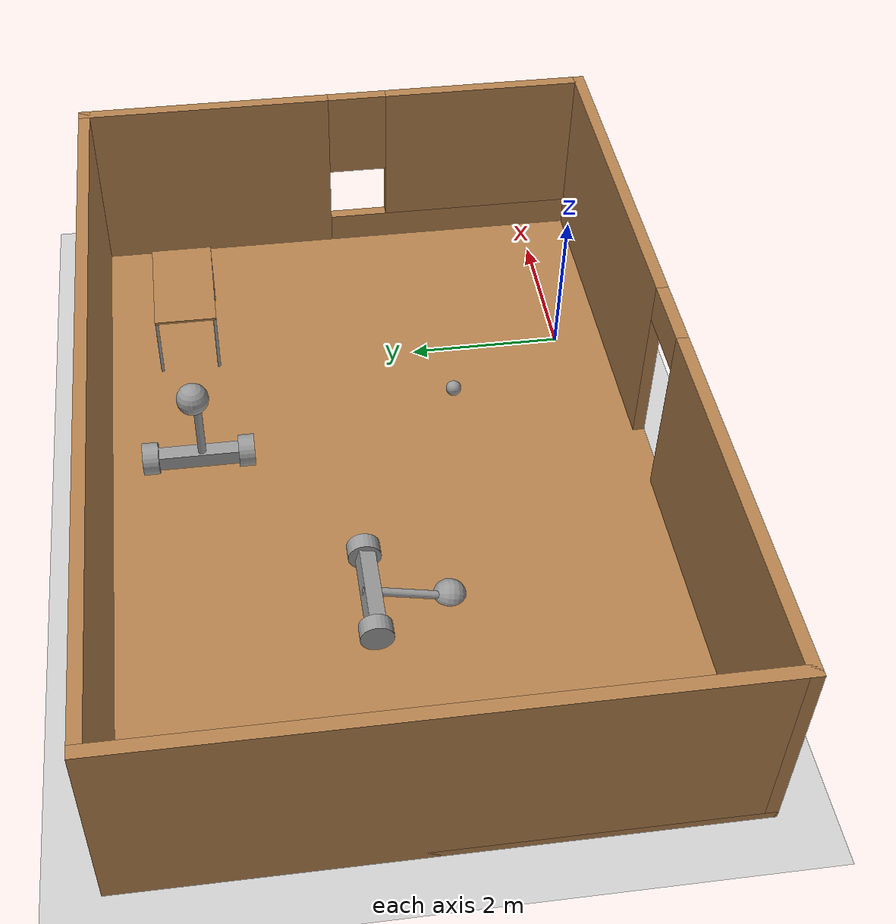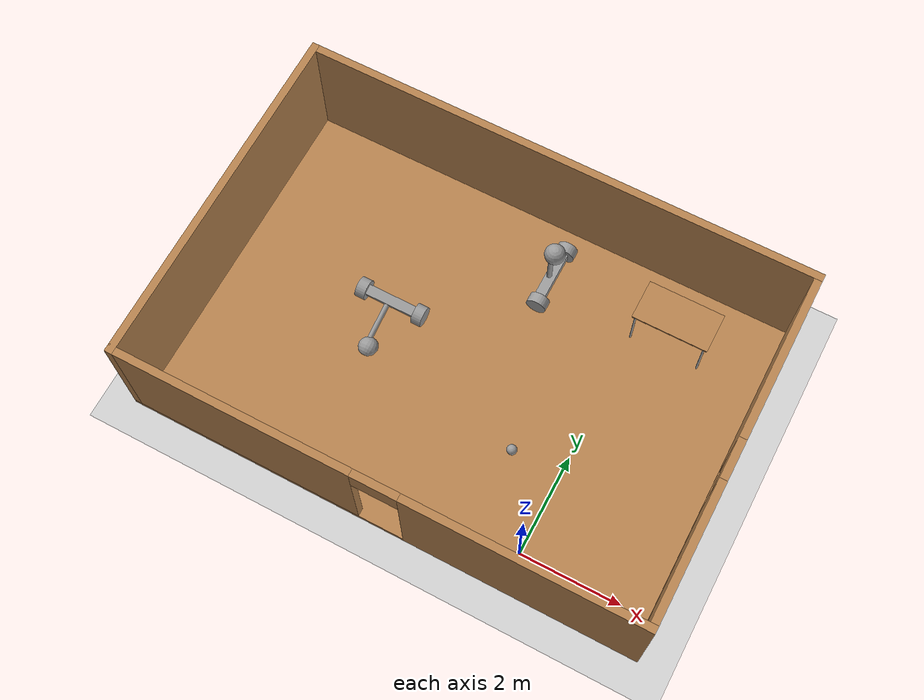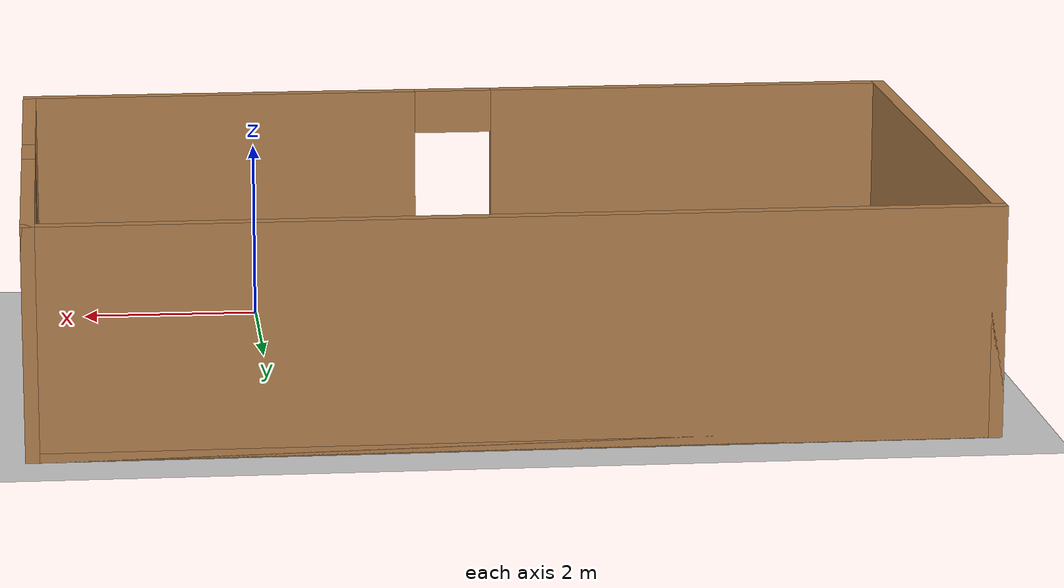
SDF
<sdf version="1.6">
 <world name="default">
  <plugin name="main" filename="/home/salehn/Desktop/robotics/UdacityProjects/Project1/script/libmain.so"/>
  <light name="sun" type="directional">
   <pose>0 0 10 0 -0 0</pose>
   <diffuse>0.8 0.8 0.8 1</diffuse>
   <specular>0.2 0.2 0.2 1</specular>
   <attenuation>
    <range>1000</range>
    <constant>0.9</constant>
    <linear>0.01</linear>
    <quadratic>0.001</quadratic>
   </attenuation>
   <direction>-0.5 0.1 -0.9</direction>
  </light>
  <model name="ground_plane">
   <static>1</static>
   <link name="link">
    <collision name="collision">
     <geometry><plane><normal>0 0 1</normal><size>100 100</size></plane></geometry>
     <surface>
      <contact><collide_bitmask>65535</collide_bitmask></contact>
      <friction><ode><mu>100</mu><mu2>50</mu2></ode></friction>
     </surface>
    </collision>
    <visual name="visual">
     <cast_shadows>0</cast_shadows>
     <geometry><plane><normal>0 0 1</normal><size>100 100</size></plane></geometry>
     <material>
      <script><uri>file://media/materials/scripts/gazebo.material</uri><name>Gazebo/Grey</name></script>
     </material>
    </visual>
   </link>
  </model>
  <gravity>0 0 -9.8</gravity>
  <magnetic_field>6e-06 2.3e-05 -4.2e-05</magnetic_field>
  <atmosphere type="adiabatic"/>
  <physics name="default_physics" default="0" type="ode">
   <max_step_size>0.001</max_step_size>
   <real_time_factor>1</real_time_factor>
   <real_time_update_rate>1000</real_time_update_rate>
  </physics>
  <scene><ambient>0.4 0.4 0.4 1</ambient><background>0.7 0.7 0.7 1</background><shadows>1</shadows></scene>
  <spherical_coordinates>
   <surface_model>EARTH_WGS84</surface_model>
   <latitude_deg>0</latitude_deg>
   <longitude_deg>0</longitude_deg>
   <elevation>0</elevation>
   <heading_deg>0</heading_deg>
  </spherical_coordinates>
  <model name="Structure">
   <pose>-2.46009 2.74718 0 0 -0 0</pose>
   <link name="Floor_10">
    <collision name="Floor_10_Collision">
     <geometry><box><size>10.25 7 0.1</size></box></geometry>
     <pose>0 0 0.05 0 -0 0</pose>
    </collision>
    <visual name="Floor_10_Visual">
     <pose>0 0 0.05 0 -0 0</pose>
     <geometry><box><size>10.25 7 0.1</size></box></geometry>
     <material>
      <script><uri>file://media/materials/scripts/gazebo.material</uri><name>Gazebo/Wood</name></script>
      <ambient>1 1 1 1</ambient>
     </material>
     <meta><layer>0</layer></meta>
    </visual>
   </link>
   <link name="Wall_63">
    <collision name="Wall_63_Collision">
     <geometry><box><size>10.25 0.15 2.5</size></box></geometry>
     <pose>0 0 1.25 0 -0 0</pose>
    </collision>
    <visual name="Wall_63_Visual">
     <pose>0 0 1.25 0 -0 0</pose>
     <geometry><box><size>10.25 0.15 2.5</size></box></geometry>
     <material>
      <script><uri>file://media/materials/scripts/gazebo.material</uri><name>Gazebo/Wood</name></script>
      <ambient>1 1 1 1</ambient>
     </material>
     <meta><layer>0</layer></meta>
    </visual>
    <pose>0 3.425 0 0 -0 0</pose>
   </link>
   <link name="Wall_64">
    <pose>5.05 0 0 0 -0 -1.5708</pose>
    <visual name="Wall_64_Visual_0">
     <pose>-1.80286 0 1.25 0 -0 0</pose>
     <geometry><box><size>3.39429 0.15 2.5</size></box></geometry>
     <material>
      <script><uri>file://media/materials/scripts/gazebo.material</uri><name>Gazebo/Wood</name></script>
      <ambient>1 1 1 1</ambient>
     </material>
     <meta><layer>0</layer></meta>
    </visual>
    <collision name="Wall_64_Collision_0">
     <geometry><box><size>3.39429 0.15 2.5</size></box></geometry>
     <pose>-1.80286 0 1.25 0 -0 0</pose>
    </collision>
    <visual name="Wall_64_Visual_1">
     <pose>1.69714 0 0.25 0 -0 0</pose>
     <geometry><box><size>3.60571 0.15 0.5</size></box></geometry>
     <material>
      <script><uri>file://media/materials/scripts/gazebo.material</uri><name>Gazebo/Wood</name></script>
      <ambient>1 1 1 1</ambient>
     </material>
     <meta><layer>0</layer></meta>
    </visual>
    <collision name="Wall_64_Collision_1">
     <geometry><box><size>3.60571 0.15 0.5</size></box></geometry>
     <pose>1.69714 0 0.25 0 -0 0</pose>
    </collision>
    <visual name="Wall_64_Visual_2">
     <pose>2.09714 0 1.5 0 -0 0</pose>
     <geometry><box><size>2.80571 0.15 2</size></box></geometry>
     <material>
      <script><uri>file://media/materials/scripts/gazebo.material</uri><name>Gazebo/Wood</name></script>
      <ambient>1 1 1 1</ambient>
     </material>
     <meta><layer>0</layer></meta>
    </visual>
    <collision name="Wall_64_Collision_2">
     <geometry><box><size>2.80571 0.15 2</size></box></geometry>
     <pose>2.09714 0 1.5 0 -0 0</pose>
    </collision>
    <visual name="Wall_64_Visual_3">
     <pose>0.294286 0 1.9 0 -0 0</pose>
     <geometry><box><size>0.8 0.15 1.2</size></box></geometry>
     <material>
      <script><uri>file://media/materials/scripts/gazebo.material</uri><name>Gazebo/Wood</name></script>
      <ambient>1 1 1 1</ambient>
     </material>
     <meta><layer>0</layer></meta>
    </visual>
    <collision name="Wall_64_Collision_3">
     <geometry><box><size>0.8 0.15 1.2</size></box></geometry>
     <pose>0.294286 0 1.9 0 -0 0</pose>
    </collision>
   </link>
   <link name="Wall_65">
    <pose>0 -3.425 0 0 -0 3.14159</pose>
    <visual name="Wall_65_Visual_0">
     <pose>-2.82083 0 1.25 0 -0 0</pose>
     <geometry><box><size>4.60834 0.15 2.5</size></box></geometry>
     <material>
      <script><uri>file://media/materials/scripts/gazebo.material</uri><name>Gazebo/Wood</name></script>
      <ambient>1 1 1 1</ambient>
     </material>
     <meta><layer>0</layer></meta>
    </visual>
    <collision name="Wall_65_Collision_0">
     <geometry><box><size>4.60834 0.15 2.5</size></box></geometry>
     <pose>-2.82083 0 1.25 0 -0 0</pose>
    </collision>
    <visual name="Wall_65_Visual_1">
     <pose>2.75417 0 1.25 0 -0 0</pose>
     <geometry><box><size>4.74166 0.15 2.5</size></box></geometry>
     <material>
      <script><uri>file://media/materials/scripts/gazebo.material</uri><name>Gazebo/Wood</name></script>
      <ambient>1 1 1 1</ambient>
     </material>
     <meta><layer>0</layer></meta>
    </visual>
    <collision name="Wall_65_Collision_1">
     <geometry><box><size>4.74166 0.15 2.5</size></box></geometry>
     <pose>2.75417 0 1.25 0 -0 0</pose>
    </collision>
    <visual name="Wall_65_Visual_2">
     <pose>-0.066659 0 2.25 0 -0 0</pose>
     <geometry><box><size>0.9 0.15 0.5</size></box></geometry>
     <material>
      <script><uri>file://media/materials/scripts/gazebo.material</uri><name>Gazebo/Wood</name></script>
      <ambient>1 1 1 1</ambient>
     </material>
     <meta><layer>0</layer></meta>
    </visual>
    <collision name="Wall_65_Collision_2">
     <geometry><box><size>0.9 0.15 0.5</size></box></geometry>
     <pose>-0.066659 0 2.25 0 -0 0</pose>
    </collision>
   </link>
   <link name="Wall_66">
    <collision name="Wall_66_Collision">
     <geometry><box><size>7 0.15 2.5</size></box></geometry>
     <pose>0 0 1.25 0 -0 0</pose>
    </collision>
    <visual name="Wall_66_Visual">
     <pose>0 0 1.25 0 -0 0</pose>
     <geometry><box><size>7 0.15 2.5</size></box></geometry>
     <material>
      <script><uri>file://media/materials/scripts/gazebo.material</uri><name>Gazebo/Wood</name></script>
      <ambient>1 1 1 1</ambient>
     </material>
     <meta><layer>0</layer></meta>
    </visual>
    <pose>-5.05 0 0 0 -0 1.5708</pose>
   </link>
   <static>1</static>
  </model>
  <model name="table">
   <static>1</static>
   <link name="link">
    <collision name="surface">
     <pose>0 0 1 0 -0 0</pose>
     <geometry><box><size>1.5 0.8 0.03</size></box></geometry>
     <surface><friction><ode><mu>0.6</mu><mu2>0.6</mu2></ode></friction></surface>
    </collision>
    <visual name="visual1">
     <pose>0 0 1 0 -0 0</pose>
     <geometry><box><size>1.5 0.8 0.03</size></box></geometry>
     <material>
      <script><uri>file://media/materials/scripts/gazebo.material</uri><name>Gazebo/Wood</name></script>
     </material>
    </visual>
    <collision name="front_left_leg">
     <pose>0.68 0.38 0.5 0 -0 0</pose>
     <geometry><cylinder><radius>0.02</radius><length>1</length></cylinder></geometry>
    </collision>
    <visual name="front_left_leg">
     <pose>0.68 0.38 0.5 0 -0 0</pose>
     <geometry><cylinder><radius>0.02</radius><length>1</length></cylinder></geometry>
     <material>
      <script><uri>file://media/materials/scripts/gazebo.material</uri><name>Gazebo/Grey</name></script>
     </material>
    </visual>
    <collision name="front_right_leg">
     <pose>0.68 -0.38 0.5 0 -0 0</pose>
     <geometry><cylinder><radius>0.02</radius><length>1</length></cylinder></geometry>
    </collision>
    <visual name="front_right_leg">
     <pose>0.68 -0.38 0.5 0 -0 0</pose>
     <geometry><cylinder><radius>0.02</radius><length>1</length></cylinder></geometry>
     <material>
      <script><uri>file://media/materials/scripts/gazebo.material</uri><name>Gazebo/Grey</name></script>
     </material>
    </visual>
    <collision name="back_right_leg">
     <pose>-0.68 -0.38 0.5 0 -0 0</pose>
     <geometry><cylinder><radius>0.02</radius><length>1</length></cylinder></geometry>
    </collision>
    <visual name="back_right_leg">
     <pose>-0.68 -0.38 0.5 0 -0 0</pose>
     <geometry><cylinder><radius>0.02</radius><length>1</length></cylinder></geometry>
     <material>
      <script><uri>file://media/materials/scripts/gazebo.material</uri><name>Gazebo/Grey</name></script>
     </material>
    </visual>
    <collision name="back_left_leg">
     <pose>-0.68 0.38 0.5 0 -0 0</pose>
     <geometry><cylinder><radius>0.02</radius><length>1</length></cylinder></geometry>
    </collision>
    <visual name="back_left_leg">
     <pose>-0.68 0.38 0.5 0 -0 0</pose>
     <geometry><cylinder><radius>0.02</radius><length>1</length></cylinder></geometry>
     <material>
      <script><uri>file://media/materials/scripts/gazebo.material</uri><name>Gazebo/Grey</name></script>
     </material>
    </visual>
   </link>
   <pose>0.645344 5.03719 0 0 -0 0</pose>
  </model>
  <model name="robot">
   <link name="link_1">
    <inertial>
     <mass>1</mass>
     <inertia><ixx>0.145833</ixx><ixy>0</ixy><ixz>0</ixz><iyy>0.145833</iyy><iyz>0</iyz><izz>0.125</izz></inertia>
    </inertial>
    <pose>-0.37971 -0.722453 -0.174 1.5707 -0 0</pose>
    <visual name="visual">
     <geometry><cylinder><radius>0.2</radius><length>0.2</length></cylinder></geometry>
     <material>
      <lighting>1</lighting>
      <script><uri>file://media/materials/scripts/gazebo.material</uri><name>Gazebo/Grey</name></script>
      <shader type="pixel"><normal_map>__default__</normal_map></shader>
      <ambient>0.3 0.3 0.3 1</ambient>
      <diffuse>0.7 0.7 0.7 1</diffuse>
      <specular>0.01 0.01 0.01 1</specular>
      <emissive>0 0 0 1</emissive>
     </material>
    </visual>
    <collision name="collision">
     <geometry><cylinder><radius>0.2</radius><length>0.2</length></cylinder></geometry>
     <surface>
      <friction>
       <ode><mu>1</mu><mu2>1</mu2><fdir1>0 0 0</fdir1><slip1>0</slip1><slip2>0</slip2></ode>
       <torsional>
        <coefficient>1</coefficient>
        <patch_radius>0</patch_radius>
        <surface_radius>0</surface_radius>
        <use_patch_radius>1</use_patch_radius>
        <ode><slip>0</slip></ode>
       </torsional>
      </friction>
      <bounce><restitution_coefficient>0</restitution_coefficient><threshold>1e+06</threshold></bounce>
      <contact>
       <collide_without_contact>0</collide_without_contact>
       <collide_without_contact_bitmask>1</collide_without_contact_bitmask>
       <collide_bitmask>1</collide_bitmask>
       <ode>
        <soft_cfm>0</soft_cfm>
        <soft_erp>0.2</soft_erp>
        <kp>1e+13</kp>
        <kd>1</kd>
        <max_vel>0.01</max_vel>
        <min_depth>0</min_depth>
       </ode>
       <bullet>
        <split_impulse>1</split_impulse>
        <split_impulse_penetration_threshold>-0.01</split_impulse_penetration_threshold>
        <soft_cfm>0</soft_cfm>
        <soft_erp>0.2</soft_erp>
        <kp>1e+13</kp>
        <kd>1</kd>
       </bullet>
      </contact>
     </surface>
    </collision>
   </link>
   <link name="link_1_clone">
    <inertial>
     <mass>1</mass>
     <inertia><ixx>0.145833</ixx><ixy>0</ixy><ixz>0</ixz><iyy>0.145833</iyy><iyz>0</iyz><izz>0.125</izz></inertia>
    </inertial>
    <pose>-0.37971 0.477585 -0.174 1.5707 -0 0</pose>
    <visual name="visual">
     <geometry><cylinder><radius>0.2</radius><length>0.2</length></cylinder></geometry>
     <material>
      <lighting>1</lighting>
      <script><uri>file://media/materials/scripts/gazebo.material</uri><name>Gazebo/Grey</name></script>
      <shader type="pixel"><normal_map>__default__</normal_map></shader>
      <ambient>0.3 0.3 0.3 1</ambient>
      <diffuse>0.7 0.7 0.7 1</diffuse>
      <specular>0.01 0.01 0.01 1</specular>
      <emissive>0 0 0 1</emissive>
     </material>
    </visual>
    <collision name="collision">
     <geometry><cylinder><radius>0.2</radius><length>0.2</length></cylinder></geometry>
     <surface>
      <friction>
       <ode><mu>1</mu><mu2>1</mu2><fdir1>0 0 0</fdir1><slip1>0</slip1><slip2>0</slip2></ode>
       <torsional>
        <coefficient>1</coefficient>
        <patch_radius>0</patch_radius>
        <surface_radius>0</surface_radius>
        <use_patch_radius>1</use_patch_radius>
        <ode><slip>0</slip></ode>
       </torsional>
      </friction>
      <bounce><restitution_coefficient>0</restitution_coefficient><threshold>1e+06</threshold></bounce>
      <contact>
       <collide_without_contact>0</collide_without_contact>
       <collide_without_contact_bitmask>1</collide_without_contact_bitmask>
       <collide_bitmask>1</collide_bitmask>
       <ode>
        <soft_cfm>0</soft_cfm>
        <soft_erp>0.2</soft_erp>
        <kp>1e+13</kp>
        <kd>1</kd>
        <max_vel>0.01</max_vel>
        <min_depth>0</min_depth>
       </ode>
       <bullet>
        <split_impulse>1</split_impulse>
        <split_impulse_penetration_threshold>-0.01</split_impulse_penetration_threshold>
        <soft_cfm>0</soft_cfm>
        <soft_erp>0.2</soft_erp>
        <kp>1e+13</kp>
        <kd>1</kd>
       </bullet>
      </contact>
     </surface>
    </collision>
   </link>
   <link name="link_2">
    <inertial>
     <mass>1</mass>
     <inertia>
      <ixx>0.166667</ixx>
      <ixy>0</ixy>
      <ixz>0</ixz>
      <iyy>0.166667</iyy>
      <iyz>0</iyz>
      <izz>0.166667</izz>
     </inertia>
    </inertial>
    <pose>-0.39971 -0.122434 -0.174 0 -0 0</pose>
    <visual name="visual">
     <geometry><box><size>0.2 1 0.2</size></box></geometry>
     <material>
      <lighting>1</lighting>
      <script><uri>file://media/materials/scripts/gazebo.material</uri><name>Gazebo/Grey</name></script>
      <shader type="pixel"><normal_map>__default__</normal_map></shader>
      <ambient>0.3 0.3 0.3 1</ambient>
      <diffuse>0.7 0.7 0.7 1</diffuse>
      <specular>0.01 0.01 0.01 1</specular>
      <emissive>0 0 0 1</emissive>
     </material>
    </visual>
    <collision name="collision">
     <geometry><box><size>0.2 1 0.2</size></box></geometry>
     <surface>
      <friction>
       <ode><mu>1</mu><mu2>1</mu2><fdir1>0 0 0</fdir1><slip1>0</slip1><slip2>0</slip2></ode>
       <torsional>
        <coefficient>1</coefficient>
        <patch_radius>0</patch_radius>
        <surface_radius>0</surface_radius>
        <use_patch_radius>1</use_patch_radius>
        <ode><slip>0</slip></ode>
       </torsional>
      </friction>
      <bounce><restitution_coefficient>0</restitution_coefficient><threshold>1e+06</threshold></bounce>
      <contact>
       <collide_without_contact>0</collide_without_contact>
       <collide_without_contact_bitmask>1</collide_without_contact_bitmask>
       <collide_bitmask>1</collide_bitmask>
       <ode>
        <soft_cfm>0</soft_cfm>
        <soft_erp>0.2</soft_erp>
        <kp>1e+13</kp>
        <kd>1</kd>
        <max_vel>0.01</max_vel>
        <min_depth>0</min_depth>
       </ode>
       <bullet>
        <split_impulse>1</split_impulse>
        <split_impulse_penetration_threshold>-0.01</split_impulse_penetration_threshold>
        <soft_cfm>0</soft_cfm>
        <soft_erp>0.2</soft_erp>
        <kp>1e+13</kp>
        <kd>1</kd>
       </bullet>
      </contact>
     </surface>
    </collision>
   </link>
   <link name="link_3">
    <inertial>
     <mass>1</mass>
     <inertia><ixx>0.145833</ixx><ixy>0</ixy><ixz>0</ixz><iyy>0.145833</iyy><iyz>0</iyz><izz>0.125</izz></inertia>
    </inertial>
    <pose>-0.42471 -0.167434 0.226 0 -0 0</pose>
    <visual name="visual">
     <geometry><cylinder><radius>0.05</radius><length>1</length></cylinder></geometry>
     <material>
      <lighting>1</lighting>
      <script><uri>file://media/materials/scripts/gazebo.material</uri><name>Gazebo/Grey</name></script>
      <shader type="pixel"><normal_map>__default__</normal_map></shader>
      <ambient>0.3 0.3 0.3 1</ambient>
      <diffuse>0.7 0.7 0.7 1</diffuse>
      <specular>0.01 0.01 0.01 1</specular>
      <emissive>0 0 0 1</emissive>
     </material>
    </visual>
    <collision name="collision">
     <geometry><cylinder><radius>0.05</radius><length>1</length></cylinder></geometry>
     <surface>
      <friction>
       <ode><mu>1</mu><mu2>1</mu2><fdir1>0 0 0</fdir1><slip1>0</slip1><slip2>0</slip2></ode>
       <torsional>
        <coefficient>1</coefficient>
        <patch_radius>0</patch_radius>
        <surface_radius>0</surface_radius>
        <use_patch_radius>1</use_patch_radius>
        <ode><slip>0</slip></ode>
       </torsional>
      </friction>
      <bounce><restitution_coefficient>0</restitution_coefficient><threshold>1e+06</threshold></bounce>
      <contact>
       <collide_without_contact>0</collide_without_contact>
       <collide_without_contact_bitmask>1</collide_without_contact_bitmask>
       <collide_bitmask>1</collide_bitmask>
       <ode>
        <soft_cfm>0</soft_cfm>
        <soft_erp>0.2</soft_erp>
        <kp>1e+13</kp>
        <kd>1</kd>
        <max_vel>0.01</max_vel>
        <min_depth>0</min_depth>
       </ode>
       <bullet>
        <split_impulse>1</split_impulse>
        <split_impulse_penetration_threshold>-0.01</split_impulse_penetration_threshold>
        <soft_cfm>0</soft_cfm>
        <soft_erp>0.2</soft_erp>
        <kp>1e+13</kp>
        <kd>1</kd>
       </bullet>
      </contact>
     </surface>
    </collision>
   </link>
   <link name="link_4">
    <inertial>
     <mass>1</mass>
     <inertia><ixx>0.1</ixx><ixy>0</ixy><ixz>0</ixz><iyy>0.1</iyy><iyz>0</iyz><izz>0.1</izz></inertia>
    </inertial>
    <pose>-0.379712 -0.122439 0.796 0 -0 0</pose>
    <visual name="visual">
     <geometry><sphere><radius>0.2</radius></sphere></geometry>
     <material>
      <lighting>1</lighting>
      <script><uri>file://media/materials/scripts/gazebo.material</uri><name>Gazebo/Grey</name></script>
      <shader type="pixel"><normal_map>__default__</normal_map></shader>
      <ambient>0.3 0.3 0.3 1</ambient>
      <diffuse>0.7 0.7 0.7 1</diffuse>
      <specular>0.01 0.01 0.01 1</specular>
      <emissive>0 0 0 1</emissive>
     </material>
    </visual>
    <collision name="collision">
     <geometry><sphere><radius>0.2</radius></sphere></geometry>
     <surface>
      <friction>
       <ode><mu>1</mu><mu2>1</mu2><fdir1>0 0 0</fdir1><slip1>0</slip1><slip2>0</slip2></ode>
       <torsional>
        <coefficient>1</coefficient>
        <patch_radius>0</patch_radius>
        <surface_radius>0</surface_radius>
        <use_patch_radius>1</use_patch_radius>
        <ode><slip>0</slip></ode>
       </torsional>
      </friction>
      <bounce><restitution_coefficient>0</restitution_coefficient><threshold>1e+06</threshold></bounce>
      <contact>
       <collide_without_contact>0</collide_without_contact>
       <collide_without_contact_bitmask>1</collide_without_contact_bitmask>
       <collide_bitmask>1</collide_bitmask>
       <ode>
        <soft_cfm>0</soft_cfm>
        <soft_erp>0.2</soft_erp>
        <kp>1e+13</kp>
        <kd>1</kd>
        <max_vel>0.01</max_vel>
        <min_depth>0</min_depth>
       </ode>
       <bullet>
        <split_impulse>1</split_impulse>
        <split_impulse_penetration_threshold>-0.01</split_impulse_penetration_threshold>
        <soft_cfm>0</soft_cfm>
        <soft_erp>0.2</soft_erp>
        <kp>1e+13</kp>
        <kd>1</kd>
       </bullet>
      </contact>
     </surface>
    </collision>
   </link>
   <joint name="link_2_JOINT_2" type="revolute">
    <parent>link_2</parent>
    <child>link_1_clone</child>
    <axis>
     <xyz>0 0 1</xyz>
     <use_parent_model_frame>0</use_parent_model_frame>
     <limit>
      <lower>-1.79769e+308</lower>
      <upper>1.79769e+308</upper>
      <effort>-1</effort>
      <velocity>-1</velocity>
     </limit>
     <dynamics>
      <spring_reference>0</spring_reference>
      <spring_stiffness>0</spring_stiffness>
      <damping>0</damping>
     </dynamics>
    </axis>
    <physics>
     <ode><limit><cfm>0</cfm><erp>0.2</erp></limit><suspension><cfm>0</cfm><erp>0.2</erp></suspension></ode>
    </physics>
   </joint>
   <joint name="link_2_JOINT_3" type="revolute">
    <parent>link_2</parent>
    <child>link_3</child>
    <axis>
     <xyz>0 0 1</xyz>
     <use_parent_model_frame>0</use_parent_model_frame>
     <limit>
      <lower>-1.79769e+308</lower>
      <upper>1.79769e+308</upper>
      <effort>-1</effort>
      <velocity>-1</velocity>
     </limit>
     <dynamics>
      <spring_reference>0</spring_reference>
      <spring_stiffness>0</spring_stiffness>
      <damping>0</damping>
     </dynamics>
    </axis>
    <physics>
     <ode><limit><cfm>0</cfm><erp>0.2</erp></limit><suspension><cfm>0</cfm><erp>0.2</erp></suspension></ode>
    </physics>
   </joint>
   <joint name="link_3_JOINT_4" type="revolute">
    <parent>link_3</parent>
    <child>link_4</child>
    <pose>0 0 0.1 0 -0 0</pose>
    <axis>
     <xyz>0 0 1</xyz>
     <use_parent_model_frame>0</use_parent_model_frame>
     <limit>
      <lower>-1.79769e+308</lower>
      <upper>1.79769e+308</upper>
      <effort>-1</effort>
      <velocity>-1</velocity>
     </limit>
     <dynamics>
      <spring_reference>0</spring_reference>
      <spring_stiffness>0</spring_stiffness>
      <damping>0</damping>
     </dynamics>
    </axis>
    <physics>
     <ode><limit><cfm>0</cfm><erp>0.2</erp></limit><suspension><cfm>0</cfm><erp>0.2</erp></suspension></ode>
    </physics>
   </joint>
   <static>0</static>
   <pose>-1.47801 5.11658 0.47407 9.6e-05 -0 0</pose>
  </model>
  <model name="robot_0">
   <link name="link_1">
    <inertial>
     <mass>1</mass>
     <inertia><ixx>0.145833</ixx><ixy>0</ixy><ixz>0</ixz><iyy>0.145833</iyy><iyz>0</iyz><izz>0.125</izz></inertia>
    </inertial>
    <pose>-0.37971 -0.722453 -0.174 1.5707 -0 0</pose>
    <visual name="visual">
     <geometry><cylinder><radius>0.2</radius><length>0.2</length></cylinder></geometry>
     <material>
      <lighting>1</lighting>
      <script><uri>file://media/materials/scripts/gazebo.material</uri><name>Gazebo/Grey</name></script>
      <shader type="pixel"><normal_map>__default__</normal_map></shader>
      <ambient>0.3 0.3 0.3 1</ambient>
      <diffuse>0.7 0.7 0.7 1</diffuse>
      <specular>0.01 0.01 0.01 1</specular>
      <emissive>0 0 0 1</emissive>
     </material>
    </visual>
    <collision name="collision">
     <geometry><cylinder><radius>0.2</radius><length>0.2</length></cylinder></geometry>
     <surface>
      <friction>
       <ode><mu>1</mu><mu2>1</mu2><fdir1>0 0 0</fdir1><slip1>0</slip1><slip2>0</slip2></ode>
       <torsional>
        <coefficient>1</coefficient>
        <patch_radius>0</patch_radius>
        <surface_radius>0</surface_radius>
        <use_patch_radius>1</use_patch_radius>
        <ode><slip>0</slip></ode>
       </torsional>
      </friction>
      <bounce><restitution_coefficient>0</restitution_coefficient><threshold>1e+06</threshold></bounce>
      <contact>
       <collide_without_contact>0</collide_without_contact>
       <collide_without_contact_bitmask>1</collide_without_contact_bitmask>
       <collide_bitmask>1</collide_bitmask>
       <ode>
        <soft_cfm>0</soft_cfm>
        <soft_erp>0.2</soft_erp>
        <kp>1e+13</kp>
        <kd>1</kd>
        <max_vel>0.01</max_vel>
        <min_depth>0</min_depth>
       </ode>
       <bullet>
        <split_impulse>1</split_impulse>
        <split_impulse_penetration_threshold>-0.01</split_impulse_penetration_threshold>
        <soft_cfm>0</soft_cfm>
        <soft_erp>0.2</soft_erp>
        <kp>1e+13</kp>
        <kd>1</kd>
       </bullet>
      </contact>
     </surface>
    </collision>
   </link>
   <link name="link_1_clone">
    <inertial>
     <mass>1</mass>
     <inertia><ixx>0.145833</ixx><ixy>0</ixy><ixz>0</ixz><iyy>0.145833</iyy><iyz>0</iyz><izz>0.125</izz></inertia>
    </inertial>
    <pose>-0.37971 0.477585 -0.174 1.5707 -0 0</pose>
    <visual name="visual">
     <geometry><cylinder><radius>0.2</radius><length>0.2</length></cylinder></geometry>
     <material>
      <lighting>1</lighting>
      <script><uri>file://media/materials/scripts/gazebo.material</uri><name>Gazebo/Grey</name></script>
      <shader type="pixel"><normal_map>__default__</normal_map></shader>
      <ambient>0.3 0.3 0.3 1</ambient>
      <diffuse>0.7 0.7 0.7 1</diffuse>
      <specular>0.01 0.01 0.01 1</specular>
      <emissive>0 0 0 1</emissive>
     </material>
    </visual>
    <collision name="collision">
     <geometry><cylinder><radius>0.2</radius><length>0.2</length></cylinder></geometry>
     <surface>
      <friction>
       <ode><mu>1</mu><mu2>1</mu2><fdir1>0 0 0</fdir1><slip1>0</slip1><slip2>0</slip2></ode>
       <torsional>
        <coefficient>1</coefficient>
        <patch_radius>0</patch_radius>
        <surface_radius>0</surface_radius>
        <use_patch_radius>1</use_patch_radius>
        <ode><slip>0</slip></ode>
       </torsional>
      </friction>
      <bounce><restitution_coefficient>0</restitution_coefficient><threshold>1e+06</threshold></bounce>
      <contact>
       <collide_without_contact>0</collide_without_contact>
       <collide_without_contact_bitmask>1</collide_without_contact_bitmask>
       <collide_bitmask>1</collide_bitmask>
       <ode>
        <soft_cfm>0</soft_cfm>
        <soft_erp>0.2</soft_erp>
        <kp>1e+13</kp>
        <kd>1</kd>
        <max_vel>0.01</max_vel>
        <min_depth>0</min_depth>
       </ode>
       <bullet>
        <split_impulse>1</split_impulse>
        <split_impulse_penetration_threshold>-0.01</split_impulse_penetration_threshold>
        <soft_cfm>0</soft_cfm>
        <soft_erp>0.2</soft_erp>
        <kp>1e+13</kp>
        <kd>1</kd>
       </bullet>
      </contact>
     </surface>
    </collision>
   </link>
   <link name="link_2">
    <inertial>
     <mass>1</mass>
     <inertia>
      <ixx>0.166667</ixx>
      <ixy>0</ixy>
      <ixz>0</ixz>
      <iyy>0.166667</iyy>
      <iyz>0</iyz>
      <izz>0.166667</izz>
     </inertia>
    </inertial>
    <pose>-0.39971 -0.122434 -0.174 0 -0 0</pose>
    <visual name="visual">
     <geometry><box><size>0.2 1 0.2</size></box></geometry>
     <material>
      <lighting>1</lighting>
      <script><uri>file://media/materials/scripts/gazebo.material</uri><name>Gazebo/Grey</name></script>
      <shader type="pixel"><normal_map>__default__</normal_map></shader>
      <ambient>0.3 0.3 0.3 1</ambient>
      <diffuse>0.7 0.7 0.7 1</diffuse>
      <specular>0.01 0.01 0.01 1</specular>
      <emissive>0 0 0 1</emissive>
     </material>
    </visual>
    <collision name="collision">
     <geometry><box><size>0.2 1 0.2</size></box></geometry>
     <surface>
      <friction>
       <ode><mu>1</mu><mu2>1</mu2><fdir1>0 0 0</fdir1><slip1>0</slip1><slip2>0</slip2></ode>
       <torsional>
        <coefficient>1</coefficient>
        <patch_radius>0</patch_radius>
        <surface_radius>0</surface_radius>
        <use_patch_radius>1</use_patch_radius>
        <ode><slip>0</slip></ode>
       </torsional>
      </friction>
      <bounce><restitution_coefficient>0</restitution_coefficient><threshold>1e+06</threshold></bounce>
      <contact>
       <collide_without_contact>0</collide_without_contact>
       <collide_without_contact_bitmask>1</collide_without_contact_bitmask>
       <collide_bitmask>1</collide_bitmask>
       <ode>
        <soft_cfm>0</soft_cfm>
        <soft_erp>0.2</soft_erp>
        <kp>1e+13</kp>
        <kd>1</kd>
        <max_vel>0.01</max_vel>
        <min_depth>0</min_depth>
       </ode>
       <bullet>
        <split_impulse>1</split_impulse>
        <split_impulse_penetration_threshold>-0.01</split_impulse_penetration_threshold>
        <soft_cfm>0</soft_cfm>
        <soft_erp>0.2</soft_erp>
        <kp>1e+13</kp>
        <kd>1</kd>
       </bullet>
      </contact>
     </surface>
    </collision>
   </link>
   <link name="link_3">
    <inertial>
     <mass>1</mass>
     <inertia><ixx>0.145833</ixx><ixy>0</ixy><ixz>0</ixz><iyy>0.145833</iyy><iyz>0</iyz><izz>0.125</izz></inertia>
    </inertial>
    <pose>-0.42471 -0.167434 0.226 0 -0 0</pose>
    <visual name="visual">
     <geometry><cylinder><radius>0.05</radius><length>1</length></cylinder></geometry>
     <material>
      <lighting>1</lighting>
      <script><uri>file://media/materials/scripts/gazebo.material</uri><name>Gazebo/Grey</name></script>
      <shader type="pixel"><normal_map>__default__</normal_map></shader>
      <ambient>0.3 0.3 0.3 1</ambient>
      <diffuse>0.7 0.7 0.7 1</diffuse>
      <specular>0.01 0.01 0.01 1</specular>
      <emissive>0 0 0 1</emissive>
     </material>
    </visual>
    <collision name="collision">
     <geometry><cylinder><radius>0.05</radius><length>1</length></cylinder></geometry>
     <surface>
      <friction>
       <ode><mu>1</mu><mu2>1</mu2><fdir1>0 0 0</fdir1><slip1>0</slip1><slip2>0</slip2></ode>
       <torsional>
        <coefficient>1</coefficient>
        <patch_radius>0</patch_radius>
        <surface_radius>0</surface_radius>
        <use_patch_radius>1</use_patch_radius>
        <ode><slip>0</slip></ode>
       </torsional>
      </friction>
      <bounce><restitution_coefficient>0</restitution_coefficient><threshold>1e+06</threshold></bounce>
      <contact>
       <collide_without_contact>0</collide_without_contact>
       <collide_without_contact_bitmask>1</collide_without_contact_bitmask>
       <collide_bitmask>1</collide_bitmask>
       <ode>
        <soft_cfm>0</soft_cfm>
        <soft_erp>0.2</soft_erp>
        <kp>1e+13</kp>
        <kd>1</kd>
        <max_vel>0.01</max_vel>
        <min_depth>0</min_depth>
       </ode>
       <bullet>
        <split_impulse>1</split_impulse>
        <split_impulse_penetration_threshold>-0.01</split_impulse_penetration_threshold>
        <soft_cfm>0</soft_cfm>
        <soft_erp>0.2</soft_erp>
        <kp>1e+13</kp>
        <kd>1</kd>
       </bullet>
      </contact>
     </surface>
    </collision>
   </link>
   <link name="link_4">
    <inertial>
     <mass>1</mass>
     <inertia><ixx>0.1</ixx><ixy>0</ixy><ixz>0</ixz><iyy>0.1</iyy><iyz>0</iyz><izz>0.1</izz></inertia>
    </inertial>
    <pose>-0.379712 -0.122439 0.796 0 -0 0</pose>
    <visual name="visual">
     <geometry><sphere><radius>0.2</radius></sphere></geometry>
     <material>
      <lighting>1</lighting>
      <script><uri>file://media/materials/scripts/gazebo.material</uri><name>Gazebo/Grey</name></script>
      <shader type="pixel"><normal_map>__default__</normal_map></shader>
      <ambient>0.3 0.3 0.3 1</ambient>
      <diffuse>0.7 0.7 0.7 1</diffuse>
      <specular>0.01 0.01 0.01 1</specular>
      <emissive>0 0 0 1</emissive>
     </material>
    </visual>
    <collision name="collision">
     <geometry><sphere><radius>0.2</radius></sphere></geometry>
     <surface>
      <friction>
       <ode><mu>1</mu><mu2>1</mu2><fdir1>0 0 0</fdir1><slip1>0</slip1><slip2>0</slip2></ode>
       <torsional>
        <coefficient>1</coefficient>
        <patch_radius>0</patch_radius>
        <surface_radius>0</surface_radius>
        <use_patch_radius>1</use_patch_radius>
        <ode><slip>0</slip></ode>
       </torsional>
      </friction>
      <bounce><restitution_coefficient>0</restitution_coefficient><threshold>1e+06</threshold></bounce>
      <contact>
       <collide_without_contact>0</collide_without_contact>
       <collide_without_contact_bitmask>1</collide_without_contact_bitmask>
       <collide_bitmask>1</collide_bitmask>
       <ode>
        <soft_cfm>0</soft_cfm>
        <soft_erp>0.2</soft_erp>
        <kp>1e+13</kp>
        <kd>1</kd>
        <max_vel>0.01</max_vel>
        <min_depth>0</min_depth>
       </ode>
       <bullet>
        <split_impulse>1</split_impulse>
        <split_impulse_penetration_threshold>-0.01</split_impulse_penetration_threshold>
        <soft_cfm>0</soft_cfm>
        <soft_erp>0.2</soft_erp>
        <kp>1e+13</kp>
        <kd>1</kd>
       </bullet>
      </contact>
     </surface>
    </collision>
   </link>
   <joint name="link_2_JOINT_2" type="revolute">
    <parent>link_2</parent>
    <child>link_1_clone</child>
    <axis>
     <xyz>0 0 1</xyz>
     <use_parent_model_frame>0</use_parent_model_frame>
     <limit>
      <lower>-1.79769e+308</lower>
      <upper>1.79769e+308</upper>
      <effort>-1</effort>
      <velocity>-1</velocity>
     </limit>
     <dynamics>
      <spring_reference>0</spring_reference>
      <spring_stiffness>0</spring_stiffness>
      <damping>0</damping>
     </dynamics>
    </axis>
    <physics>
     <ode><limit><cfm>0</cfm><erp>0.2</erp></limit><suspension><cfm>0</cfm><erp>0.2</erp></suspension></ode>
    </physics>
   </joint>
   <joint name="link_2_JOINT_3" type="revolute">
    <parent>link_2</parent>
    <child>link_3</child>
    <axis>
     <xyz>0 0 1</xyz>
     <use_parent_model_frame>0</use_parent_model_frame>
     <limit>
      <lower>-1.79769e+308</lower>
      <upper>1.79769e+308</upper>
      <effort>-1</effort>
      <velocity>-1</velocity>
     </limit>
     <dynamics>
      <spring_reference>0</spring_reference>
      <spring_stiffness>0</spring_stiffness>
      <damping>0</damping>
     </dynamics>
    </axis>
    <physics>
     <ode><limit><cfm>0</cfm><erp>0.2</erp></limit><suspension><cfm>0</cfm><erp>0.2</erp></suspension></ode>
    </physics>
   </joint>
   <joint name="link_3_JOINT_4" type="revolute">
    <parent>link_3</parent>
    <child>link_4</child>
    <pose>0 0 0.1 0 -0 0</pose>
    <axis>
     <xyz>0 0 1</xyz>
     <use_parent_model_frame>0</use_parent_model_frame>
     <limit>
      <lower>-1.79769e+308</lower>
      <upper>1.79769e+308</upper>
      <effort>-1</effort>
      <velocity>-1</velocity>
     </limit>
     <dynamics>
      <spring_reference>0</spring_reference>
      <spring_stiffness>0</spring_stiffness>
      <damping>0</damping>
     </dynamics>
    </axis>
    <physics>
     <ode><limit><cfm>0</cfm><erp>0.2</erp></limit><suspension><cfm>0</cfm><erp>0.2</erp></suspension></ode>
    </physics>
   </joint>
   <static>0</static>
   <pose>-4.17628 3.04901 -0.11072 -3.1415 1.32414 1.57087</pose>
  </model>
  <model name="my_ball">
   <link name="link_0">
    <inertial>
     <mass>1</mass>
     <inertia><ixx>0.1</ixx><ixy>0</ixy><ixz>0</ixz><iyy>0.1</iyy><iyz>0</iyz><izz>0.1</izz></inertia>
    </inertial>
    <visual name="visual">
     <geometry><sphere><radius>0.1</radius></sphere></geometry>
     <material>
      <lighting>1</lighting>
      <script><uri>file://media/materials/scripts/gazebo.material</uri><name>Gazebo/Grey</name></script>
      <ambient>1 1 1 1</ambient>
      <diffuse>1 1 1 1</diffuse>
      <specular>1 1 1 1</specular>
      <emissive>1 1 1 1</emissive>
      <shader type="vertex"><normal_map>__default__</normal_map></shader>
     </material>
    </visual>
    <collision name="collision">
     <geometry><sphere><radius>0.1</radius></sphere></geometry>
     <surface>
      <friction>
       <ode><mu>1</mu><mu2>1</mu2><fdir1>0 0 0</fdir1><slip1>0</slip1><slip2>0</slip2></ode>
       <torsional>
        <coefficient>1</coefficient>
        <patch_radius>0</patch_radius>
        <surface_radius>0</surface_radius>
        <use_patch_radius>1</use_patch_radius>
        <ode><slip>0</slip></ode>
       </torsional>
      </friction>
      <bounce><restitution_coefficient>0</restitution_coefficient><threshold>1e+06</threshold></bounce>
      <contact>
       <collide_without_contact>0</collide_without_contact>
       <collide_without_contact_bitmask>1</collide_without_contact_bitmask>
       <collide_bitmask>1</collide_bitmask>
       <ode>
        <soft_cfm>0</soft_cfm>
        <soft_erp>0.2</soft_erp>
        <kp>1e+13</kp>
        <kd>1</kd>
        <max_vel>0.01</max_vel>
        <min_depth>0</min_depth>
       </ode>
       <bullet>
        <split_impulse>1</split_impulse>
        <split_impulse_penetration_threshold>-0.01</split_impulse_penetration_threshold>
        <soft_cfm>0</soft_cfm>
        <soft_erp>0.2</soft_erp>
        <kp>1e+13</kp>
        <kd>1</kd>
       </bullet>
      </contact>
     </surface>
    </collision>
   </link>
   <static>0</static>
   <pose>-0.975146 1.5994 0.2 0 -0 0</pose>
  </model>
 </world>
</sdf>
